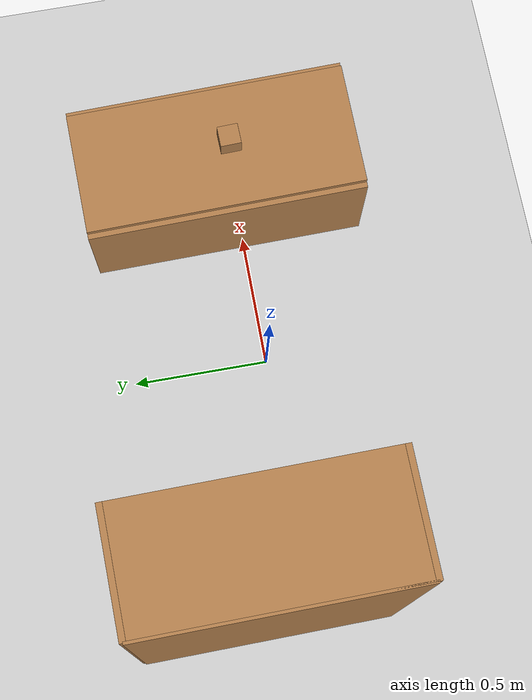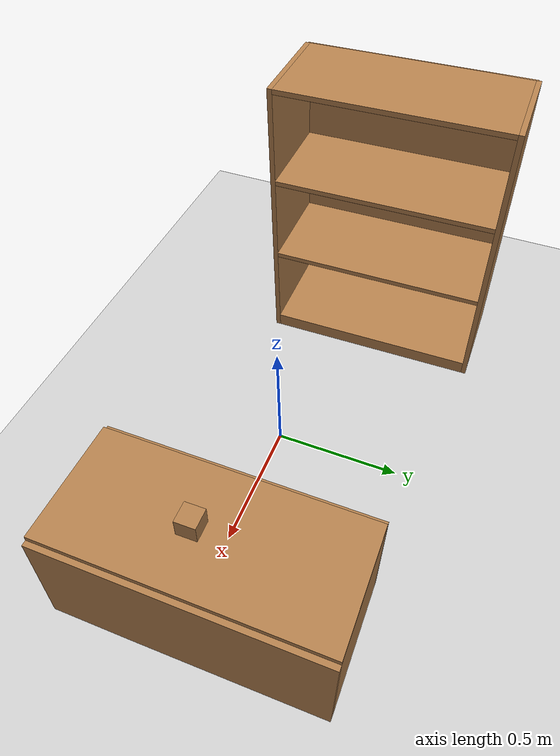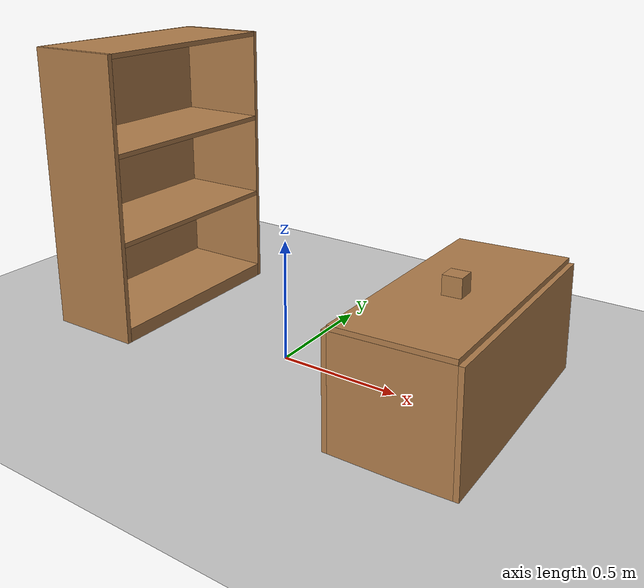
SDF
<sdf version="1.7">
 <world name="default">
  <light name="sun" type="directional">
   <pose>0 0 10 0 -0 0</pose>
   <diffuse>0.8 0.8 0.8 1</diffuse>
   <specular>0.2 0.2 0.2 1</specular>
   <attenuation>
    <range>1000</range>
    <constant>0.9</constant>
    <linear>0.01</linear>
    <quadratic>0.001</quadratic>
   </attenuation>
   <direction>-0.5 0.1 -0.9</direction>
   <spot><inner_angle>0</inner_angle><outer_angle>0</outer_angle><falloff>0</falloff></spot>
  </light>
  <model name="ground_plane">
   <static>1</static>
   <link name="link">
    <collision name="collision">
     <geometry><plane><normal>0 0 1</normal><size>100 100</size></plane></geometry>
     <surface>
      <contact><collide_bitmask>65535</collide_bitmask></contact>
      <friction><ode><mu>100</mu><mu2>50</mu2></ode></friction>
     </surface>
    </collision>
    <visual name="visual">
     <cast_shadows>0</cast_shadows>
     <geometry><plane><normal>0 0 1</normal><size>100 100</size></plane></geometry>
     <material>
      <script><uri>file://media/materials/scripts/gazebo.material</uri><name>Gazebo/Grey</name></script>
     </material>
    </visual>
   </link>
  </model>
  <gravity>0 0 -9.8</gravity>
  <magnetic_field>6e-06 2.3e-05 -4.2e-05</magnetic_field>
  <atmosphere type="adiabatic"/>
  <physics type="ode">
   <max_step_size>0.001</max_step_size>
   <real_time_factor>1</real_time_factor>
   <real_time_update_rate>1000</real_time_update_rate>
  </physics>
  <scene><ambient>0.4 0.4 0.4 1</ambient><background>0.7 0.7 0.7 1</background><shadows>1</shadows></scene>
  <spherical_coordinates>
   <surface_model>EARTH_WGS84</surface_model>
   <latitude_deg>0</latitude_deg>
   <longitude_deg>0</longitude_deg>
   <elevation>0</elevation>
   <heading_deg>0</heading_deg>
  </spherical_coordinates>
  <model name="bookshelf">
   <static>1</static>
   <link name="link">
    <inertial><mass>1</mass></inertial>
    <collision name="back">
     <pose>0 0.005 0.6 0 -0 0</pose>
     <geometry><box><size>0.9 0.01 1.2</size></box></geometry>
    </collision>
    <visual name="visual1">
     <pose>0 0.005 0.6 0 -0 0</pose>
     <geometry><box><size>0.9 0.01 1.2</size></box></geometry>
     <material>
      <script><uri>file://media/materials/scripts/gazebo.material</uri><name>Gazebo/Wood</name></script>
     </material>
    </visual>
    <collision name="left_side">
     <pose>0.45 -0.195 0.6 0 -0 0</pose>
     <geometry><box><size>0.02 0.4 1.2</size></box></geometry>
    </collision>
    <visual name="visual2">
     <pose>0.45 -0.195 0.6 0 -0 0</pose>
     <geometry><box><size>0.02 0.4 1.2</size></box></geometry>
     <material>
      <script><uri>file://media/materials/scripts/gazebo.material</uri><name>Gazebo/Wood</name></script>
     </material>
    </visual>
    <collision name="right_side">
     <pose>-0.45 -0.195 0.6 0 -0 0</pose>
     <geometry><box><size>0.02 0.4 1.2</size></box></geometry>
    </collision>
    <visual name="visual3">
     <pose>-0.45 -0.195 0.6 0 -0 0</pose>
     <geometry><box><size>0.02 0.4 1.2</size></box></geometry>
     <material>
      <script><uri>file://media/materials/scripts/gazebo.material</uri><name>Gazebo/Wood</name></script>
     </material>
    </visual>
    <collision name="bottom">
     <pose>0 -0.195 0.03 0 -0 0</pose>
     <geometry><box><size>0.88 0.4 0.06</size></box></geometry>
    </collision>
    <visual name="visual4">
     <pose>0 -0.195 0.03 0 -0 0</pose>
     <geometry><box><size>0.88 0.4 0.06</size></box></geometry>
     <material>
      <script><uri>file://media/materials/scripts/gazebo.material</uri><name>Gazebo/Wood</name></script>
     </material>
    </visual>
    <collision name="top">
     <pose>0 -0.195 1.19 0 -0 0</pose>
     <geometry><box><size>0.88 0.4 0.02</size></box></geometry>
    </collision>
    <visual name="visual5">
     <pose>0 -0.195 1.19 0 -0 0</pose>
     <geometry><box><size>0.88 0.4 0.02</size></box></geometry>
     <material>
      <script><uri>file://media/materials/scripts/gazebo.material</uri><name>Gazebo/Wood</name></script>
     </material>
    </visual>
    <collision name="low_shelf">
     <pose>0 -0.195 0.43 0 -0 0</pose>
     <geometry><box><size>0.88 0.4 0.02</size></box></geometry>
    </collision>
    <visual name="visual6">
     <pose>0 -0.195 0.43 0 -0 0</pose>
     <geometry><box><size>0.88 0.4 0.02</size></box></geometry>
     <material>
      <script><uri>file://media/materials/scripts/gazebo.material</uri><name>Gazebo/Wood</name></script>
     </material>
    </visual>
    <collision name="high_shelf">
     <pose>0 -0.195 0.8 0 -0 0</pose>
     <geometry><box><size>0.88 0.4 0.02</size></box></geometry>
    </collision>
    <visual name="visual7">
     <pose>0 -0.195 0.8 0 -0 0</pose>
     <geometry><box><size>0.88 0.4 0.02</size></box></geometry>
     <material>
      <script><uri>file://media/materials/scripts/gazebo.material</uri><name>Gazebo/Wood</name></script>
     </material>
    </visual>
   </link>
   <pose>-1.01196 0.177978 -0.000104 -2.9e-05 -0.002166 1.5843</pose>
  </model>
  <model name="cabinet">
   <static>1</static>
   <link name="cabinet_bottom_plate">
    <inertial>
     <pose>0 0 -1 0 -0 0</pose>
     <inertia><ixx>2.05</ixx><ixy>0</ixy><ixz>0</ixz><iyy>2.05</iyy><iyz>0</iyz><izz>2.05</izz></inertia>
     <mass>25</mass>
    </inertial>
    <collision name="cabinet_bottom_plate_geom">
     <pose>0 0 0.01 0 -0 0</pose>
     <geometry><box><size>0.45 0.45 0.02</size></box></geometry>
    </collision>
    <visual name="cabinet_bottom_plate_geom_visual">
     <pose>0 0 0.01 0 -0 0</pose>
     <geometry><box><size>0.45 0.45 0.02</size></box></geometry>
     <material>
      <script><uri>file://media/materials/scripts/gazebo.material</uri><name>Gazebo/Wood</name></script>
     </material>
    </visual>
    <collision name="cabinet_bottom_plate_geom_cabinet_back_plate">
     <pose>0.235 0 0.51 0 -0 0</pose>
     <geometry><box><size>0.02 0.45 1.02</size></box></geometry>
    </collision>
    <visual name="cabinet_bottom_plate_geom_cabinet_back_plate_visual">
     <pose>0.235 0 0.51 0 -0 0</pose>
     <geometry><box><size>0.02 0.45 1.02</size></box></geometry>
     <material>
      <script><uri>file://media/materials/scripts/gazebo.material</uri><name>Gazebo/Wood</name></script>
     </material>
    </visual>
    <collision name="cabinet_bottom_plate_geom_cabinet_left_plate">
     <pose>0 0.235 0.51 0 -0 0</pose>
     <geometry><box><size>0.45 0.02 1.02</size></box></geometry>
    </collision>
    <visual name="cabinet_bottom_plate_geom_cabinet_left_plate_visual">
     <pose>0 0.235 0.51 0 -0 0</pose>
     <geometry><box><size>0.45 0.02 1.02</size></box></geometry>
     <material>
      <script><uri>file://media/materials/scripts/gazebo.material</uri><name>Gazebo/Wood</name></script>
     </material>
    </visual>
    <collision name="cabinet_bottom_plate_geom_cabinet_middle_plate">
     <pose>0 0 0.51 0 -0 0</pose>
     <geometry><box><size>0.45 0.45 0.02</size></box></geometry>
    </collision>
    <visual name="cabinet_bottom_plate_geom_cabinet_middle_plate_visual">
     <pose>0 0 0.51 0 -0 0</pose>
     <geometry><box><size>0.45 0.45 0.02</size></box></geometry>
     <material>
      <script><uri>file://media/materials/scripts/gazebo.material</uri><name>Gazebo/Wood</name></script>
     </material>
    </visual>
    <collision name="cabinet_bottom_plate_geom_cabinet_right_plate">
     <pose>0 -0.235 0.51 0 -0 0</pose>
     <geometry><box><size>0.45 0.02 1.02</size></box></geometry>
    </collision>
    <visual name="cabinet_bottom_plate_geom_cabinet_right_plate_visual">
     <pose>0 -0.235 0.51 0 -0 0</pose>
     <geometry><box><size>0.45 0.02 1.02</size></box></geometry>
     <material>
      <script><uri>file://media/materials/scripts/gazebo.material</uri><name>Gazebo/Wood</name></script>
     </material>
    </visual>
    <collision name="cabinet_bottom_plate_geom_cabinet_top_plate">
     <pose>0 0 1.01 0 -0 0</pose>
     <geometry><box><size>0.45 0.45 0.02</size></box></geometry>
    </collision>
    <visual name="cabinet_bottom_plate_geom_cabinet_top_plate_visual">
     <pose>0 0 1.01 0 -0 0</pose>
     <geometry><box><size>0.45 0.45 0.02</size></box></geometry>
     <material>
      <script><uri>file://media/materials/scripts/gazebo.material</uri><name>Gazebo/Wood</name></script>
     </material>
    </visual>
   </link>
   <pose>0.714832 -0.447732 0.220707 2.13393 -1.53534 2.59242</pose>
  </model>
  <model name="wood_cube_7_5cm">
   <link name="link">
    <pose>0 0 0.0375 0 -0 0</pose>
    <inertial>
     <mass>0.2249</mass>
     <inertia>
      <ixx>0.000210844</ixx>
      <ixy>0</ixy>
      <ixz>0</ixz>
      <iyy>0.000210844</iyy>
      <iyz>0</iyz>
      <izz>0.000210844</izz>
     </inertia>
    </inertial>
    <collision name="collision">
     <geometry><box><size>0.075 0.075 0.075</size></box></geometry>
     <surface>
      <contact>
       <poissons_ratio>0.347</poissons_ratio>
       <elastic_modulus>8.8e+09</elastic_modulus>
       <ode><kp>100000</kp><kd>100</kd><max_vel>100</max_vel><min_depth>0.001</min_depth></ode>
      </contact>
      <friction>
       <torsional>
        <coefficient>1</coefficient>
        <use_patch_radius>0</use_patch_radius>
        <surface_radius>0.01</surface_radius>
       </torsional>
      </friction>
     </surface>
    </collision>
    <visual name="visual">
     <geometry><box><size>0.075 0.075 0.075</size></box></geometry>
     <material>
      <script><uri>file://media/materials/scripts/gazebo.material</uri><name>Gazebo/Wood</name></script>
     </material>
    </visual>
   </link>
   <pose>0.673139 0.014256 0.492563 0.573782 -1.53533 2.59242</pose>
  </model>
 </world>
</sdf>
